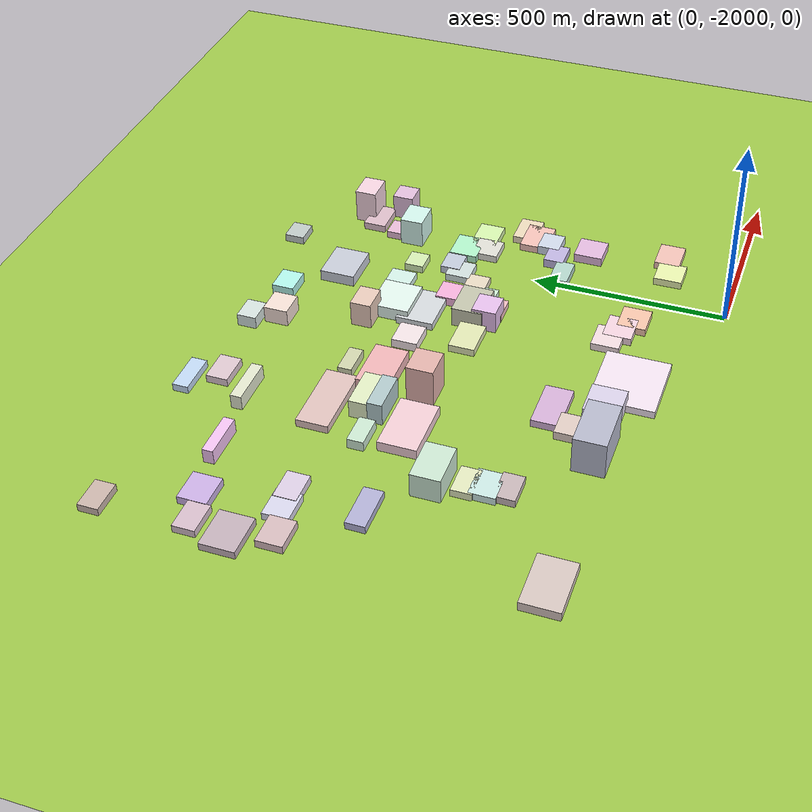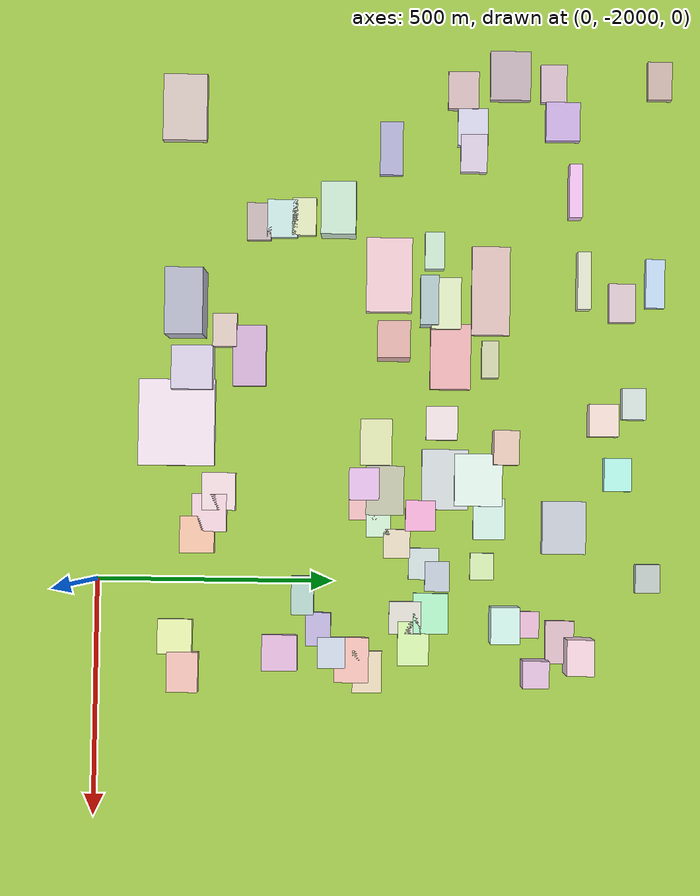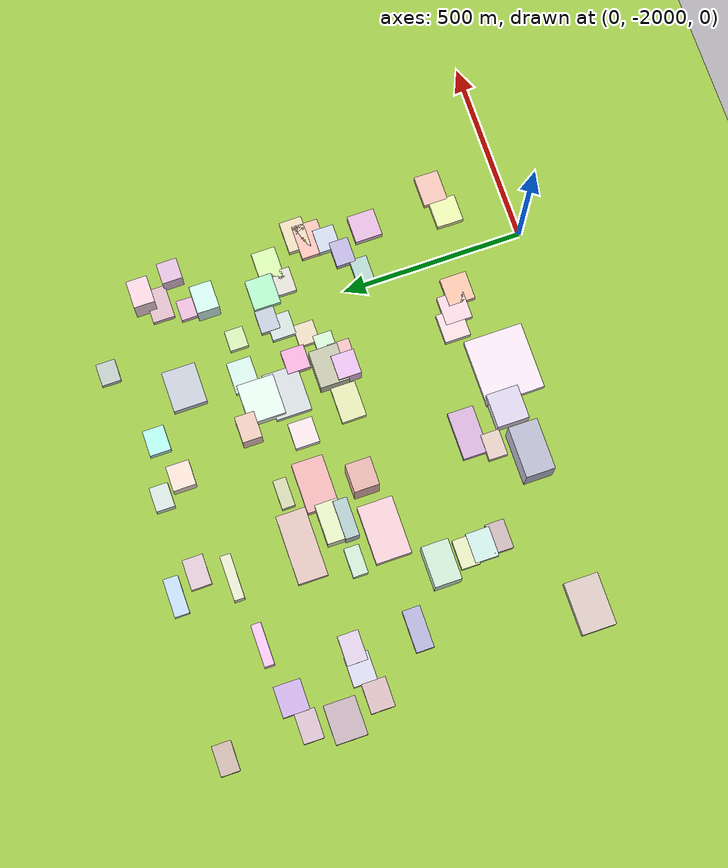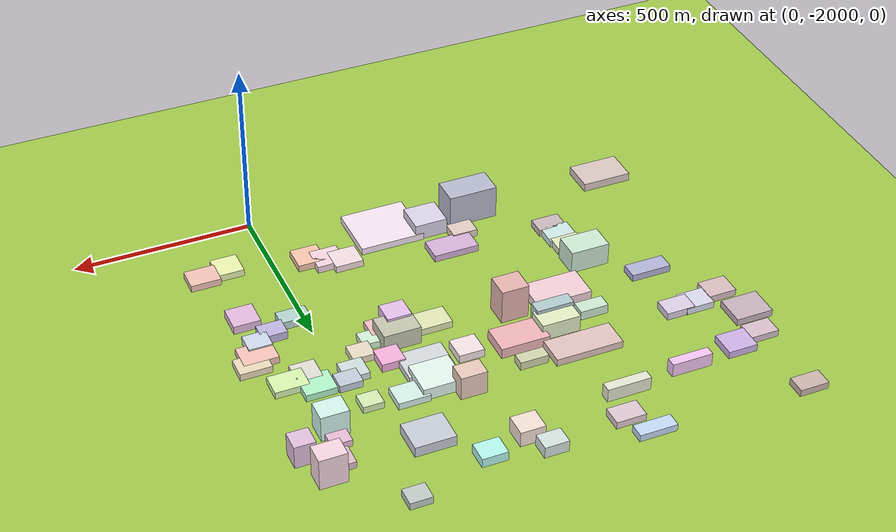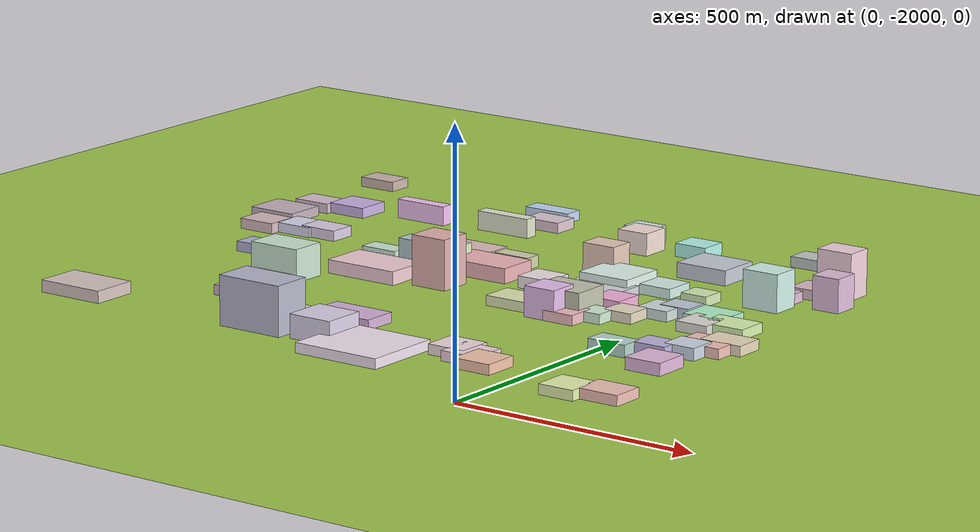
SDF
<sdf version="1.9">
 <world name="city_map">
  <model name="ground_plane">
   <static>1</static>
   <link name="link">
    <collision name="collision">
     <geometry><plane><normal>0 0 1</normal><size>11000 11000</size></plane></geometry>
    </collision>
    <visual name="visual">
     <geometry><plane><normal>0 0 1</normal><size>11000 11000</size></plane></geometry>
     <material>
      <ambient>0.551 0.712 0.210 1</ambient>
      <diffuse>0.651 0.812 0.310 1</diffuse>
      <specular>0.1 0.1 0.05 1</specular>
     </material>
    </visual>
   </link>
  </model>
  <model name="building_296272154">
   <static>1</static>
   <pose>-333.15054182032713 -1835.4500552881868 10.0 0 0 0</pose>
   <link name="link">
    <collision name="collision">
     <geometry><box><size>183.29429999987923 161.93154199717628 20</size></box></geometry>
    </collision>
    <visual name="visual">
     <cast_shadows>false</cast_shadows>
     <geometry><box><size>183.29429999987923 161.93154199717628 20</size></box></geometry>
     <material>
      <ambient>0.889 0.828 0.881 1</ambient>
      <diffuse>0.989 0.928 0.981 1</diffuse>
      <specular>0.297 0.278 0.294 1</specular>
      <emissive>0.01 0.01 0.01 1</emissive>
     </material>
    </visual>
   </link>
  </model>
  <model name="building_746118709">
   <static>1</static>
   <pose>-652.0483020920806 -1387.5432757839808 13.5 0 0 0</pose>
   <link name="link">
    <collision name="collision">
     <geometry><box><size>158.05205404151792 97.08059999955054 27.0</size></box></geometry>
    </collision>
    <visual name="visual">
     <cast_shadows>false</cast_shadows>
     <geometry><box><size>158.05205404151792 97.08059999955054 27.0</size></box></geometry>
     <material>
      <ambient>0.884 0.739 0.770 1</ambient>
      <diffuse>0.984 0.839 0.870 1</diffuse>
      <specular>0.295 0.252 0.261 1</specular>
      <emissive>0.01 0.01 0.01 1</emissive>
     </material>
    </visual>
   </link>
  </model>
  <model name="building_683485028">
   <static>1</static>
   <pose>-621.1043826910775 -1171.2189192430753 10.5 0 0 0</pose>
   <link name="link">
    <collision name="collision">
     <geometry><box><size>188.82476844535847 81.08550000034143 21.0</size></box></geometry>
    </collision>
    <visual name="visual">
     <cast_shadows>false</cast_shadows>
     <geometry><box><size>188.82476844535847 81.08550000034143 21.0</size></box></geometry>
     <material>
      <ambient>0.809 0.691 0.671 1</ambient>
      <diffuse>0.909 0.791 0.771 1</diffuse>
      <specular>0.273 0.237 0.231 1</specular>
      <emissive>0.01 0.01 0.01 1</emissive>
     </material>
    </visual>
   </link>
  </model>
  <model name="building_749013060">
   <static>1</static>
   <pose>-1006.5354186029734 -1827.4117226310132 12.0 0 0 0</pose>
   <link name="link">
    <collision name="collision">
     <geometry><box><size>141.9241552651078 93.5618999994432 24.0</size></box></geometry>
    </collision>
    <visual name="visual">
     <cast_shadows>false</cast_shadows>
     <geometry><box><size>141.9241552651078 93.5618999994432 24.0</size></box></geometry>
     <material>
      <ambient>0.775 0.708 0.685 1</ambient>
      <diffuse>0.875 0.808 0.785 1</diffuse>
      <specular>0.263 0.242 0.236 1</specular>
      <emissive>0.01 0.01 0.01 1</emissive>
     </material>
    </visual>
   </link>
  </model>
  <model name="building_397403182">
   <static>1</static>
   <pose>-218.47697458689717 -1264.6035485329335 10.0 0 0 0</pose>
   <link name="link">
    <collision name="collision">
     <geometry><box><size>127.72748300686777 97.702200000505 20</size></box></geometry>
    </collision>
    <visual name="visual">
     <cast_shadows>false</cast_shadows>
     <geometry><box><size>127.72748300686777 97.702200000505 20</size></box></geometry>
     <material>
      <ambient>0.762 0.783 0.797 1</ambient>
      <diffuse>0.862 0.883 0.897 1</diffuse>
      <specular>0.259 0.265 0.269 1</specular>
      <emissive>0.01 0.01 0.01 1</emissive>
     </material>
    </visual>
   </link>
  </model>
  <model name="building_839717531">
   <static>1</static>
   <pose>-478.64563139325287 -1255.7979732360977 15.0 0 0 0</pose>
   <link name="link">
    <collision name="collision">
     <geometry><box><size>137.71958092130964 85.54770000043277 30.0</size></box></geometry>
    </collision>
    <visual name="visual">
     <cast_shadows>false</cast_shadows>
     <geometry><box><size>137.71958092130964 85.54770000043277 30.0</size></box></geometry>
     <material>
      <ambient>0.870 0.637 0.648 1</ambient>
      <diffuse>0.970 0.737 0.748 1</diffuse>
      <specular>0.291 0.221 0.225 1</specular>
      <emissive>0.01 0.01 0.01 1</emissive>
     </material>
    </visual>
   </link>
  </model>
  <model name="building_857533639">
   <static>1</static>
   <pose>-217.95832628244892 -1194.0864479062614 17.543935763565486 0 0 0</pose>
   <link name="link">
    <collision name="collision">
     <geometry><box><size>110.42280000009441 101.1345110778354 35.08787152713097</size></box></geometry>
    </collision>
    <visual name="visual">
     <cast_shadows>false</cast_shadows>
     <geometry><box><size>110.42280000009441 101.1345110778354 35.08787152713097</size></box></geometry>
     <material>
      <ambient>0.823 0.899 0.866 1</ambient>
      <diffuse>0.923 0.999 0.966 1</diffuse>
      <specular>0.277 0.300 0.290 1</specular>
      <emissive>0.01 0.01 0.01 1</emissive>
     </material>
    </visual>
   </link>
  </model>
  <model name="building_438642443">
   <static>1</static>
   <pose>-583.5155454283137 -1815.2790743171636 48.81684222580935 0 0 0</pose>
   <link name="link">
    <collision name="collision">
     <geometry><box><size>139.6934999998578 79.72886399928544 97.6336844516187</size></box></geometry>
    </collision>
    <visual name="visual">
     <cast_shadows>false</cast_shadows>
     <geometry><box><size>139.6934999998578 79.72886399928544 97.6336844516187</size></box></geometry>
     <material>
      <ambient>0.642 0.652 0.729 1</ambient>
      <diffuse>0.742 0.752 0.829 1</diffuse>
      <specular>0.222 0.225 0.249 1</specular>
      <emissive>0.01 0.01 0.01 1</emissive>
     </material>
    </visual>
   </link>
  </model>
  <model name="building_701244760">
   <static>1</static>
   <pose>-119.571562639842 -1012.0463028909658 15.0 0 0 0</pose>
   <link name="link">
    <collision name="collision">
     <geometry><box><size>111.41315887709224 92.03009999968259 30.0</size></box></geometry>
    </collision>
    <visual name="visual">
     <cast_shadows>false</cast_shadows>
     <geometry><box><size>111.41315887709224 92.03009999968259 30.0</size></box></geometry>
     <material>
      <ambient>0.708 0.728 0.773 1</ambient>
      <diffuse>0.808 0.828 0.873 1</diffuse>
      <specular>0.242 0.248 0.262 1</specular>
      <emissive>0.01 0.01 0.01 1</emissive>
     </material>
    </visual>
   </link>
  </model>
  <model name="building_900991304">
   <static>1</static>
   <pose>-477.13966517560453 -1682.75867720001 10.0 0 0 0</pose>
   <link name="link">
    <collision name="collision">
     <geometry><box><size>129.73847567813752 70.36289999965106 20</size></box></geometry>
    </collision>
    <visual name="visual">
     <cast_shadows>false</cast_shadows>
     <geometry><box><size>129.73847567813752 70.36289999965106 20</size></box></geometry>
     <material>
      <ambient>0.767 0.623 0.778 1</ambient>
      <diffuse>0.867 0.723 0.878 1</diffuse>
      <specular>0.260 0.217 0.263 1</specular>
      <emissive>0.01 0.01 0.01 1</emissive>
     </material>
    </visual>
   </link>
  </model>
  <model name="building_255088716">
   <static>1</static>
   <pose>-1083.3858277837153 -1133.4423490361617 10.0 0 0 0</pose>
   <link name="link">
    <collision name="collision">
     <geometry><box><size>105.09231428904559 85.84739999999158 20</size></box></geometry>
    </collision>
    <visual name="visual">
     <cast_shadows>false</cast_shadows>
     <geometry><box><size>105.09231428904559 85.84739999999158 20</size></box></geometry>
     <material>
      <ambient>0.701 0.622 0.662 1</ambient>
      <diffuse>0.801 0.722 0.762 1</diffuse>
      <specular>0.240 0.217 0.229 1</specular>
      <emissive>0.01 0.01 0.01 1</emissive>
     </material>
    </visual>
   </link>
  </model>
  <model name="building_740932418">
   <static>1</static>
   <pose>-193.32245647153294 -1391.149778231176 26.505255094531897 0 0 0</pose>
   <link name="link">
    <collision name="collision">
     <geometry><box><size>103.31439100715997 79.55369999979212 53.010510189063794</size></box></geometry>
    </collision>
    <visual name="visual">
     <cast_shadows>false</cast_shadows>
     <geometry><box><size>103.31439100715997 79.55369999979212 53.010510189063794</size></box></geometry>
     <material>
      <ambient>0.694 0.700 0.605 1</ambient>
      <diffuse>0.794 0.800 0.705 1</diffuse>
      <specular>0.238 0.240 0.212 1</specular>
      <emissive>0.01 0.01 0.01 1</emissive>
     </material>
    </visual>
   </link>
  </model>
  <model name="building_925273843">
   <static>1</static>
   <pose>-787.2904786269545 -1496.245793894506 33.0 0 0 0</pose>
   <link name="link">
    <collision name="collision">
     <geometry><box><size>111.06598986856534 73.55969999994016 66.0</size></box></geometry>
    </collision>
    <visual name="visual">
     <cast_shadows>false</cast_shadows>
     <geometry><box><size>111.06598986856534 73.55969999994016 66.0</size></box></geometry>
     <material>
      <ambient>0.730 0.840 0.756 1</ambient>
      <diffuse>0.830 0.940 0.856 1</diffuse>
      <specular>0.249 0.282 0.257 1</specular>
      <emissive>0.01 0.01 0.01 1</emissive>
     </material>
    </visual>
   </link>
  </model>
  <model name="building_938354103">
   <static>1</static>
   <pose>-448.7517027245904 -1801.8102161431113 23.381824939166115 0 0 0</pose>
   <link name="link">
    <collision name="collision">
     <geometry><box><size>92.71829999983794 87.72837160444907 46.76364987833223</size></box></geometry>
    </collision>
    <visual name="visual">
     <cast_shadows>false</cast_shadows>
     <geometry><box><size>92.71829999983794 87.72837160444907 46.76364987833223</size></box></geometry>
     <material>
      <ambient>0.788 0.757 0.846 1</ambient>
      <diffuse>0.888 0.857 0.946 1</diffuse>
      <specular>0.266 0.257 0.284 1</specular>
      <emissive>0.01 0.01 0.01 1</emissive>
     </material>
    </visual>
   </link>
  </model>
  <model name="building_823130952">
   <static>1</static>
   <pose>165.4824159864386 -1457.9534077364544 10.0 0 0 0</pose>
   <link name="link">
    <collision name="collision">
     <geometry><box><size>95.02710000000292 72.80458998642041 20</size></box></geometry>
    </collision>
    <visual name="visual">
     <cast_shadows>false</cast_shadows>
     <geometry><box><size>95.02710000000292 72.80458998642041 20</size></box></geometry>
     <material>
      <ambient>0.892 0.690 0.651 1</ambient>
      <diffuse>0.992 0.790 0.751 1</diffuse>
      <specular>0.298 0.237 0.225 1</specular>
      <emissive>0.01 0.01 0.01 1</emissive>
     </material>
    </visual>
   </link>
  </model>
  <model name="building_173097054">
   <static>1</static>
   <pose>-590.2929804939414 -1266.382845747815 24.581197760829276 0 0 0</pose>
   <link name="link">
    <collision name="collision">
     <geometry><box><size>108.84480460962632 62.38200000024108 49.16239552165855</size></box></geometry>
    </collision>
    <visual name="visual">
     <cast_shadows>false</cast_shadows>
     <geometry><box><size>108.84480460962632 62.38200000024108 49.16239552165855</size></box></geometry>
     <material>
      <ambient>0.821 0.867 0.699 1</ambient>
      <diffuse>0.921 0.967 0.799 1</diffuse>
      <specular>0.276 0.290 0.240 1</specular>
      <emissive>0.01 0.01 0.01 1</emissive>
     </material>
    </visual>
   </link>
  </model>
  <model name="building_899867792">
   <static>1</static>
   <pose>-296.1827706840844 -1410.9876359187315 10.0 0 0 0</pose>
   <link name="link">
    <collision name="collision">
     <geometry><box><size>98.16840000043214 67.40594366271426 20</size></box></geometry>
    </collision>
    <visual name="visual">
     <cast_shadows>false</cast_shadows>
     <geometry><box><size>98.16840000043214 67.40594366271426 20</size></box></geometry>
     <material>
      <ambient>0.816 0.837 0.634 1</ambient>
      <diffuse>0.916 0.937 0.734 1</diffuse>
      <specular>0.275 0.281 0.220 1</specular>
      <emissive>0.01 0.01 0.01 1</emissive>
     </material>
    </visual>
   </link>
  </model>
  <model name="building_782211771">
   <static>1</static>
   <pose>65.32245829557306 -1291.4820289686493 10.0 0 0 0</pose>
   <link name="link">
    <collision name="collision">
     <geometry><box><size>85.12590000023579 74.13983165746862 20</size></box></geometry>
    </collision>
    <visual name="visual">
     <cast_shadows>false</cast_shadows>
     <geometry><box><size>85.12590000023579 74.13983165746862 20</size></box></geometry>
     <material>
      <ambient>0.623 0.892 0.720 1</ambient>
      <diffuse>0.723 0.992 0.820 1</diffuse>
      <specular>0.217 0.298 0.246 1</specular>
      <emissive>0.01 0.01 0.01 1</emissive>
     </material>
    </visual>
   </link>
  </model>
  <model name="building_647516196">
   <static>1</static>
   <pose>128.92654108588823 -1327.7097841097498 10.0 0 0 0</pose>
   <link name="link">
    <collision name="collision">
     <geometry><box><size>93.39540000065227 65.9184201199528 20</size></box></geometry>
    </collision>
    <visual name="visual">
     <cast_shadows>false</cast_shadows>
     <geometry><box><size>93.39540000065227 65.9184201199528 20</size></box></geometry>
     <material>
      <ambient>0.775 0.894 0.614 1</ambient>
      <diffuse>0.875 0.994 0.714 1</diffuse>
      <specular>0.262 0.298 0.214 1</specular>
      <emissive>0.01 0.01 0.01 1</emissive>
     </material>
    </visual>
   </link>
  </model>
  <model name="building_810832167">
   <static>1</static>
   <pose>-985.9766065749009 -1020.7924598323632 10.5 0 0 0</pose>
   <link name="link">
    <collision name="collision">
     <geometry><box><size>83.1057000002886 72.73741967634388 21.0</size></box></geometry>
    </collision>
    <visual name="visual">
     <cast_shadows>false</cast_shadows>
     <geometry><box><size>83.1057000002886 72.73741967634388 21.0</size></box></geometry>
     <material>
      <ambient>0.727 0.619 0.829 1</ambient>
      <diffuse>0.827 0.719 0.929 1</diffuse>
      <specular>0.248 0.216 0.279 1</specular>
      <emissive>0.01 0.01 0.01 1</emissive>
     </material>
    </visual>
   </link>
  </model>
  <model name="building_768928161">
   <static>1</static>
   <pose>-142.19985735113215 -1763.3272934822267 10.0 0 0 0</pose>
   <link name="link">
    <collision name="collision">
     <geometry><box><size>79.59810000031098 73.31617436885581 20</size></box></geometry>
    </collision>
    <visual name="visual">
     <cast_shadows>false</cast_shadows>
     <geometry><box><size>79.59810000031098 73.31617436885581 20</size></box></geometry>
     <material>
      <ambient>0.892 0.765 0.811 1</ambient>
      <diffuse>0.992 0.865 0.911 1</diffuse>
      <specular>0.298 0.259 0.273 1</specular>
      <emissive>0.01 0.01 0.01 1</emissive>
     </material>
    </visual>
   </link>
  </model>
  <model name="building_636814227">
   <static>1</static>
   <pose>-136.41320293982915 -1170.076877662624 10.0 0 0 0</pose>
   <link name="link">
    <collision name="collision">
     <geometry><box><size>87.4063796633493 66.54449999998491 20</size></box></geometry>
    </collision>
    <visual name="visual">
     <cast_shadows>false</cast_shadows>
     <geometry><box><size>87.4063796633493 66.54449999998491 20</size></box></geometry>
     <material>
      <ambient>0.766 0.876 0.840 1</ambient>
      <diffuse>0.866 0.976 0.940 1</diffuse>
      <specular>0.260 0.293 0.282 1</specular>
      <emissive>0.01 0.01 0.01 1</emissive>
     </material>
    </visual>
   </link>
  </model>
  <model name="building_252000779">
   <static>1</static>
   <pose>-95.7075877594773 -1788.408235808967 10.0 0 0 0</pose>
   <link name="link">
    <collision name="collision">
     <geometry><box><size>77.91090000031176 73.14082731701069 20</size></box></geometry>
    </collision>
    <visual name="visual">
     <cast_shadows>false</cast_shadows>
     <geometry><box><size>77.91090000031176 73.14082731701069 20</size></box></geometry>
     <material>
      <ambient>0.898 0.703 0.601 1</ambient>
      <diffuse>0.998 0.803 0.701 1</diffuse>
      <specular>0.299 0.241 0.210 1</specular>
      <emissive>0.01 0.01 0.01 1</emissive>
     </material>
    </visual>
   </link>
  </model>
  <model name="building_927271066">
   <static>1</static>
   <pose>152.0417010461455 -1610.0769292861478 12.0 0 0 0</pose>
   <link name="link">
    <collision name="collision">
     <geometry><box><size>75.5466000002869 74.90163264489344 24.0</size></box></geometry>
    </collision>
    <visual name="visual">
     <cast_shadows>false</cast_shadows>
     <geometry><box><size>75.5466000002869 74.90163264489344 24.0</size></box></geometry>
     <material>
      <ambient>0.822 0.655 0.801 1</ambient>
      <diffuse>0.922 0.755 0.901 1</diffuse>
      <specular>0.277 0.226 0.270 1</specular>
      <emissive>0.01 0.01 0.01 1</emissive>
     </material>
    </visual>
   </link>
  </model>
  <model name="building_29976820">
   <static>1</static>
   <pose>-187.44509991566363 -1743.8664965465248 10.0 0 0 0</pose>
   <link name="link">
    <collision name="collision">
     <geometry><box><size>79.60919999965199 71.07264529236654 20</size></box></geometry>
    </collision>
    <visual name="visual">
     <cast_shadows>false</cast_shadows>
     <geometry><box><size>79.60919999965199 71.07264529236654 20</size></box></geometry>
     <material>
      <ambient>0.887 0.798 0.817 1</ambient>
      <diffuse>0.987 0.898 0.917 1</diffuse>
      <specular>0.296 0.269 0.275 1</specular>
      <emissive>0.01 0.01 0.01 1</emissive>
     </material>
    </visual>
   </link>
  </model>
  <model name="building_553643427">
   <static>1</static>
   <pose>195.58181477399796 -1815.2716328119247 10.0 0 0 0</pose>
   <link name="link">
    <collision name="collision">
     <geometry><box><size>84.83730000001799 66.41829230510957 20</size></box></geometry>
    </collision>
    <visual name="visual">
     <cast_shadows>false</cast_shadows>
     <geometry><box><size>84.83730000001799 66.41829230510957 20</size></box></geometry>
     <material>
      <ambient>0.881 0.691 0.646 1</ambient>
      <diffuse>0.981 0.791 0.746 1</diffuse>
      <specular>0.294 0.237 0.224 1</specular>
      <emissive>0.01 0.01 0.01 1</emissive>
     </material>
    </visual>
   </link>
  </model>
  <model name="building_145779216">
   <static>1</static>
   <pose>-923.8678655328869 -1385.8626202024866 10.0 0 0 0</pose>
   <link name="link">
    <collision name="collision">
     <geometry><box><size>113.7795171568418 48.47369999939133 20</size></box></geometry>
    </collision>
    <visual name="visual">
     <cast_shadows>false</cast_shadows>
     <geometry><box><size>113.7795171568418 48.47369999939133 20</size></box></geometry>
     <material>
      <ambient>0.628 0.624 0.771 1</ambient>
      <diffuse>0.728 0.724 0.871 1</diffuse>
      <specular>0.218 0.217 0.261 1</specular>
      <emissive>0.01 0.01 0.01 1</emissive>
     </material>
    </visual>
   </link>
  </model>
  <model name="building_749317446">
   <static>1</static>
   <pose>122.69209413770747 -1018.3315890251289 10.0 0 0 0</pose>
   <link name="link">
    <collision name="collision">
     <geometry><box><size>90.33180000034235 60.172007355839405 20</size></box></geometry>
    </collision>
    <visual name="visual">
     <cast_shadows>false</cast_shadows>
     <geometry><box><size>90.33180000034235 60.172007355839405 20</size></box></geometry>
     <material>
      <ambient>0.794 0.667 0.713 1</ambient>
      <diffuse>0.894 0.767 0.813 1</diffuse>
      <specular>0.268 0.230 0.244 1</specular>
      <emissive>0.01 0.01 0.01 1</emissive>
     </material>
    </visual>
   </link>
  </model>
  <model name="building_212828575">
   <static>1</static>
   <pose>189.794467649677 -1424.6542866531054 10.0 0 0 0</pose>
   <link name="link">
    <collision name="collision">
     <geometry><box><size>87.84540000046803 61.757915559025804 20</size></box></geometry>
    </collision>
    <visual name="visual">
     <cast_shadows>false</cast_shadows>
     <geometry><box><size>87.84540000046803 61.757915559025804 20</size></box></geometry>
     <material>
      <ambient>0.858 0.788 0.668 1</ambient>
      <diffuse>0.958 0.888 0.768 1</diffuse>
      <specular>0.287 0.266 0.230 1</specular>
      <emissive>0.01 0.01 0.01 1</emissive>
     </material>
    </visual>
   </link>
  </model>
  <model name="building_555604841">
   <static>1</static>
   <pose>120.63757251000804 -1832.307136158221 10.0 0 0 0</pose>
   <link name="link">
    <collision name="collision">
     <geometry><box><size>73.8039000004278 73.06022192123383 20</size></box></geometry>
    </collision>
    <visual name="visual">
     <cast_shadows>false</cast_shadows>
     <geometry><box><size>73.8039000004278 73.06022192123383 20</size></box></geometry>
     <material>
      <ambient>0.849 0.889 0.616 1</ambient>
      <diffuse>0.949 0.989 0.716 1</diffuse>
      <specular>0.285 0.297 0.215 1</specular>
      <emissive>0.01 0.01 0.01 1</emissive>
     </material>
    </visual>
   </link>
  </model>
  <model name="building_843185136">
   <static>1</static>
   <pose>-507.8849791657618 -1376.3945747142839 50.0 0 0 0</pose>
   <link name="link">
    <collision name="collision">
     <geometry><box><size>76.93147933236818 68.74229999964143 100</size></box></geometry>
    </collision>
    <visual name="visual">
     <cast_shadows>false</cast_shadows>
     <geometry><box><size>76.93147933236818 68.74229999964143 100</size></box></geometry>
     <material>
      <ambient>0.821 0.627 0.603 1</ambient>
      <diffuse>0.921 0.727 0.703 1</diffuse>
      <specular>0.276 0.218 0.211 1</specular>
      <emissive>0.01 0.01 0.01 1</emissive>
     </material>
    </visual>
   </link>
  </model>
  <model name="building_907489887">
   <static>1</static>
   <pose>-770.9638161175508 -1616.4759693728452 10.0 0 0 0</pose>
   <link name="link">
    <collision name="collision">
     <geometry><box><size>80.75943044828594 64.6463999998872 20</size></box></geometry>
    </collision>
    <visual name="visual">
     <cast_shadows>false</cast_shadows>
     <geometry><box><size>80.75943044828594 64.6463999998872 20</size></box></geometry>
     <material>
      <ambient>0.733 0.847 0.831 1</ambient>
      <diffuse>0.833 0.947 0.931 1</diffuse>
      <specular>0.250 0.284 0.279 1</specular>
      <emissive>0.01 0.01 0.01 1</emissive>
     </material>
    </visual>
   </link>
  </model>
  <model name="building_368094505">
   <static>1</static>
   <pose>-1050.7885327807023 -1233.3134745628342 10.5 0 0 0</pose>
   <link name="link">
    <collision name="collision">
     <geometry><box><size>79.53150000032139 64.93743144550024 21.0</size></box></geometry>
    </collision>
    <visual name="visual">
     <cast_shadows>false</cast_shadows>
     <geometry><box><size>79.53150000032139 64.93743144550024 21.0</size></box></geometry>
     <material>
      <ambient>0.775 0.664 0.676 1</ambient>
      <diffuse>0.875 0.764 0.776 1</diffuse>
      <specular>0.262 0.229 0.233 1</specular>
      <emissive>0.01 0.01 0.01 1</emissive>
     </material>
    </visual>
   </link>
  </model>
  <model name="building_65953199">
   <static>1</static>
   <pose>-972.5374016104271 -1212.6756540586325 10.0 0 0 0</pose>
   <link name="link">
    <collision name="collision">
     <geometry><box><size>79.89779999986979 64.33608508151492 20</size></box></geometry>
    </collision>
    <visual name="visual">
     <cast_shadows>false</cast_shadows>
     <geometry><box><size>79.89779999986979 64.33608508151492 20</size></box></geometry>
     <material>
      <ambient>0.781 0.777 0.860 1</ambient>
      <diffuse>0.881 0.877 0.960 1</diffuse>
      <specular>0.264 0.263 0.288 1</specular>
      <emissive>0.01 0.01 0.01 1</emissive>
     </material>
    </visual>
   </link>
  </model>
  <model name="building_704496990">
   <static>1</static>
   <pose>-337.98231776002734 -1272.0945407463942 12.0 0 0 0</pose>
   <link name="link">
    <collision name="collision">
     <geometry><box><size>71.06219999993613 66.50554396251525 24.0</size></box></geometry>
    </collision>
    <visual name="visual">
     <cast_shadows>false</cast_shadows>
     <geometry><box><size>71.06219999993613 66.50554396251525 24.0</size></box></geometry>
     <material>
      <ambient>0.887 0.824 0.834 1</ambient>
      <diffuse>0.987 0.924 0.934 1</diffuse>
      <specular>0.296 0.277 0.280 1</specular>
      <emissive>0.01 0.01 0.01 1</emissive>
     </material>
    </visual>
   </link>
  </model>
  <model name="building_833387699">
   <static>1</static>
   <pose>86.20130369235106 -1137.0404016424106 37.53518693762932 0 0 0</pose>
   <link name="link">
    <collision name="collision">
     <geometry><box><size>76.56288313298087 60.86129999982148 75.07037387525864</size></box></geometry>
    </collision>
    <visual name="visual">
     <cast_shadows>false</cast_shadows>
     <geometry><box><size>76.56288313298087 60.86129999982148 75.07037387525864</size></box></geometry>
     <material>
      <ambient>0.753 0.892 0.853 1</ambient>
      <diffuse>0.853 0.992 0.953 1</diffuse>
      <specular>0.256 0.298 0.286 1</specular>
      <emissive>0.01 0.01 0.01 1</emissive>
     </material>
    </visual>
   </link>
  </model>
  <model name="building_233890122">
   <static>1</static>
   <pose>75.18895584244851 -1345.409686631759 10.0 0 0 0</pose>
   <link name="link">
    <collision name="collision">
     <geometry><box><size>68.42526287301271 68.07629999974552 20</size></box></geometry>
    </collision>
    <visual name="visual">
     <cast_shadows>false</cast_shadows>
     <geometry><box><size>68.42526287301271 68.07629999974552 20</size></box></geometry>
     <material>
      <ambient>0.807 0.800 0.767 1</ambient>
      <diffuse>0.907 0.900 0.867 1</diffuse>
      <specular>0.272 0.270 0.260 1</specular>
      <emissive>0.01 0.01 0.01 1</emissive>
     </material>
    </visual>
   </link>
  </model>
  <model name="building_898413310">
   <static>1</static>
   <pose>-598.4651760346044 -891.6657988698104 10.5 0 0 0</pose>
   <link name="link">
    <collision name="collision">
     <geometry><box><size>82.50629999959358 55.85364277404544 21.0</size></box></geometry>
    </collision>
    <visual name="visual">
     <cast_shadows>false</cast_shadows>
     <geometry><box><size>82.50629999959358 55.85364277404544 21.0</size></box></geometry>
     <material>
      <ambient>0.801 0.712 0.747 1</ambient>
      <diffuse>0.901 0.812 0.847 1</diffuse>
      <specular>0.270 0.244 0.254 1</specular>
      <emissive>0.01 0.01 0.01 1</emissive>
     </material>
    </visual>
   </link>
  </model>
  <model name="building_473130646">
   <static>1</static>
   <pose>-915.3908770186717 -1210.1247497790557 10.5 0 0 0</pose>
   <link name="link">
    <collision name="collision">
     <geometry><box><size>81.18539999993146 56.337060908197294 21.0</size></box></geometry>
    </collision>
    <visual name="visual">
     <cast_shadows>false</cast_shadows>
     <geometry><box><size>81.18539999993146 56.337060908197294 21.0</size></box></geometry>
     <material>
      <ambient>0.796 0.740 0.829 1</ambient>
      <diffuse>0.896 0.840 0.929 1</diffuse>
      <specular>0.269 0.252 0.279 1</specular>
      <emissive>0.01 0.01 0.01 1</emissive>
     </material>
    </visual>
   </link>
  </model>
  <model name="building_184979944">
   <static>1</static>
   <pose>-1067.1112929764242 -1040.888632279529 10.0 0 0 0</pose>
   <link name="link">
    <collision name="collision">
     <geometry><box><size>81.10769999981216 55.41618296605699 20</size></box></geometry>
    </collision>
    <visual name="visual">
     <cast_shadows>false</cast_shadows>
     <geometry><box><size>81.10769999981216 55.41618296605699 20</size></box></geometry>
     <material>
      <ambient>0.772 0.673 0.728 1</ambient>
      <diffuse>0.872 0.773 0.828 1</diffuse>
      <specular>0.262 0.232 0.249 1</specular>
      <emissive>0.01 0.01 0.01 1</emissive>
     </material>
    </visual>
   </link>
  </model>
  <model name="building_915777205">
   <static>1</static>
   <pose>-39.43768776297094 -1307.3762032733027 10.0 0 0 0</pose>
   <link name="link">
    <collision name="collision">
     <geometry><box><size>66.55560000011462 64.66821457081873 20</size></box></geometry>
    </collision>
    <visual name="visual">
     <cast_shadows>false</cast_shadows>
     <geometry><box><size>66.55560000011462 64.66821457081873 20</size></box></geometry>
     <material>
      <ambient>0.749 0.805 0.799 1</ambient>
      <diffuse>0.849 0.905 0.899 1</diffuse>
      <specular>0.255 0.272 0.270 1</specular>
      <emissive>0.01 0.01 0.01 1</emissive>
     </material>
    </visual>
   </link>
  </model>
  <model name="building_837107591">
   <static>1</static>
   <pose>149.4953260868724 -981.1903176437895 46.01170450714189 0 0 0</pose>
   <link name="link">
    <collision name="collision">
     <geometry><box><size>74.89850952504918 57.220500000653374 92.02340901428379</size></box></geometry>
    </collision>
    <visual name="visual">
     <cast_shadows>false</cast_shadows>
     <geometry><box><size>74.89850952504918 57.220500000653374 92.02340901428379</size></box></geometry>
     <material>
      <ambient>0.894 0.763 0.809 1</ambient>
      <diffuse>0.994 0.863 0.909 1</diffuse>
      <specular>0.298 0.259 0.273 1</specular>
      <emissive>0.01 0.01 0.01 1</emissive>
     </material>
    </visual>
   </link>
  </model>
  <model name="building_596263059">
   <static>1</static>
   <pose>-347.1552854001148 -930.7652592622618 22.5 0 0 0</pose>
   <link name="link">
    <collision name="collision">
     <geometry><box><size>68.37199495044348 62.68169999979989 45.0</size></box></geometry>
    </collision>
    <visual name="visual">
     <cast_shadows>false</cast_shadows>
     <geometry><box><size>68.37199495044348 62.68169999979989 45.0</size></box></geometry>
     <material>
      <ambient>0.895 0.810 0.769 1</ambient>
      <diffuse>0.995 0.910 0.869 1</diffuse>
      <specular>0.299 0.273 0.261 1</specular>
      <emissive>0.01 0.01 0.01 1</emissive>
     </material>
    </visual>
   </link>
  </model>
  <model name="building_386868968">
   <static>1</static>
   <pose>-206.82584305631852 -1434.9927673340082 30.06481635473665 0 0 0</pose>
   <link name="link">
    <collision name="collision">
     <geometry><box><size>67.6989000000674 63.01474600558552 60.1296327094733</size></box></geometry>
    </collision>
    <visual name="visual">
     <cast_shadows>false</cast_shadows>
     <geometry><box><size>67.6989000000674 63.01474600558552 60.1296327094733</size></box></geometry>
     <material>
      <ambient>0.835 0.678 0.857 1</ambient>
      <diffuse>0.935 0.778 0.957 1</diffuse>
      <specular>0.281 0.233 0.287 1</specular>
      <emissive>0.01 0.01 0.01 1</emissive>
     </material>
    </visual>
   </link>
  </model>
  <model name="building_772562677">
   <static>1</static>
   <pose>-640.8966837979704 -821.5518017690238 10.0 0 0 0</pose>
   <link name="link">
    <collision name="collision">
     <geometry><box><size>104.26132923639972 40.4595000003809 20</size></box></geometry>
    </collision>
    <visual name="visual">
     <cast_shadows>false</cast_shadows>
     <geometry><box><size>104.26132923639972 40.4595000003809 20</size></box></geometry>
     <material>
      <ambient>0.691 0.783 0.890 1</ambient>
      <diffuse>0.791 0.883 0.990 1</diffuse>
      <specular>0.237 0.265 0.297 1</specular>
      <emissive>0.01 0.01 0.01 1</emissive>
     </material>
    </visual>
   </link>
  </model>
  <model name="building_287434641">
   <static>1</static>
   <pose>-1076.177999771332 -814.5701106010387 10.0 0 0 0</pose>
   <link name="link">
    <collision name="collision">
     <geometry><box><size>81.39630000002995 51.570151060255256 20</size></box></geometry>
    </collision>
    <visual name="visual">
     <cast_shadows>false</cast_shadows>
     <geometry><box><size>81.39630000002995 51.570151060255256 20</size></box></geometry>
     <material>
      <ambient>0.726 0.637 0.601 1</ambient>
      <diffuse>0.826 0.737 0.701 1</diffuse>
      <specular>0.248 0.221 0.210 1</specular>
      <emissive>0.01 0.01 0.01 1</emissive>
     </material>
    </visual>
   </link>
  </model>
  <model name="building_870800691">
   <static>1</static>
   <pose>-141.14206867755496 -1315.2547756583951 12.0 0 0 0</pose>
   <link name="link">
    <collision name="collision">
     <geometry><box><size>65.05356089212074 63.71400000003291 24.0</size></box></geometry>
    </collision>
    <visual name="visual">
     <cast_shadows>false</cast_shadows>
     <geometry><box><size>65.05356089212074 63.71400000003291 24.0</size></box></geometry>
     <material>
      <ambient>0.894 0.622 0.791 1</ambient>
      <diffuse>0.994 0.722 0.891 1</diffuse>
      <specular>0.298 0.217 0.267 1</specular>
      <emissive>0.01 0.01 0.01 1</emissive>
     </material>
    </visual>
   </link>
  </model>
  <model name="building_633635597">
   <static>1</static>
   <pose>-763.9797166387254 -1666.0706508925534 10.0 0 0 0</pose>
   <link name="link">
    <collision name="collision">
     <geometry><box><size>79.46977594636303 51.637200000079986 20</size></box></geometry>
    </collision>
    <visual name="visual">
     <cast_shadows>false</cast_shadows>
     <geometry><box><size>79.46977594636303 51.637200000079986 20</size></box></geometry>
     <material>
      <ambient>0.714 0.645 0.654 1</ambient>
      <diffuse>0.814 0.745 0.754 1</diffuse>
      <specular>0.244 0.224 0.226 1</specular>
      <emissive>0.01 0.01 0.01 1</emissive>
     </material>
    </visual>
   </link>
  </model>
  <model name="building_209956541">
   <static>1</static>
   <pose>-164.20752518561886 -1436.6773704722123 10.0 0 0 0</pose>
   <link name="link">
    <collision name="collision">
     <geometry><box><size>66.9774000003116 60.90011716893814 20</size></box></geometry>
    </collision>
    <visual name="visual">
     <cast_shadows>false</cast_shadows>
     <geometry><box><size>66.9774000003116 60.90011716893814 20</size></box></geometry>
     <material>
      <ambient>0.882 0.674 0.692 1</ambient>
      <diffuse>0.982 0.774 0.792 1</diffuse>
      <specular>0.295 0.232 0.238 1</specular>
      <emissive>0.01 0.01 0.01 1</emissive>
     </material>
    </visual>
   </link>
  </model>
  <model name="building_796604057">
   <static>1</static>
   <pose>-232.95538153006365 -898.8030474079561 13.5 0 0 0</pose>
   <link name="link">
    <collision name="collision">
     <geometry><box><size>70.41839999951094 57.92103719547306 27.0</size></box></geometry>
    </collision>
    <visual name="visual">
     <cast_shadows>false</cast_shadows>
     <geometry><box><size>70.41839999951094 57.92103719547306 27.0</size></box></geometry>
     <material>
      <ambient>0.631 0.898 0.853 1</ambient>
      <diffuse>0.731 0.998 0.953 1</diffuse>
      <specular>0.219 0.299 0.286 1</specular>
      <emissive>0.01 0.01 0.01 1</emissive>
     </material>
    </visual>
   </link>
  </model>
  <model name="building_323897026">
   <static>1</static>
   <pose>-775.557160228091 -1570.1946786409349 10.0 0 0 0</pose>
   <link name="link">
    <collision name="collision">
     <geometry><box><size>79.80595125847442 50.815799999945455 20</size></box></geometry>
    </collision>
    <visual name="visual">
     <cast_shadows>false</cast_shadows>
     <geometry><box><size>79.80595125847442 50.815799999945455 20</size></box></geometry>
     <material>
      <ambient>0.823 0.849 0.678 1</ambient>
      <diffuse>0.923 0.949 0.778 1</diffuse>
      <specular>0.277 0.285 0.233 1</specular>
      <emissive>0.01 0.01 0.01 1</emissive>
     </material>
    </visual>
   </link>
  </model>
  <model name="building_461173340">
   <static>1</static>
   <pose>-595.876462198801 -1301.8783944641657 29.709749949138153 0 0 0</pose>
   <link name="link">
    <collision name="collision">
     <geometry><box><size>105.40005150186867 37.98420000063629 59.41949989827631</size></box></geometry>
    </collision>
    <visual name="visual">
     <cast_shadows>false</cast_shadows>
     <geometry><box><size>105.40005150186867 37.98420000063629 59.41949989827631</size></box></geometry>
     <material>
      <ambient>0.623 0.719 0.727 1</ambient>
      <diffuse>0.723 0.819 0.827 1</diffuse>
      <specular>0.217 0.246 0.248 1</specular>
      <emissive>0.01 0.01 0.01 1</emissive>
     </material>
    </visual>
   </link>
  </model>
  <model name="building_470300616">
   <static>1</static>
   <pose>30.066921808024006 -1562.8469178878831 12.0 0 0 0</pose>
   <link name="link">
    <collision name="collision">
     <geometry><box><size>81.69600000037747 47.61198419467304 24.0</size></box></geometry>
    </collision>
    <visual name="visual">
     <cast_shadows>false</cast_shadows>
     <geometry><box><size>81.69600000037747 47.61198419467304 24.0</size></box></geometry>
     <material>
      <ambient>0.632 0.768 0.728 1</ambient>
      <diffuse>0.732 0.868 0.828 1</diffuse>
      <specular>0.220 0.260 0.248 1</specular>
      <emissive>0.01 0.01 0.01 1</emissive>
     </material>
    </visual>
   </link>
  </model>
  <model name="building_800394015">
   <static>1</static>
   <pose>-286.16959757124044 -1137.5437222068733 34.43807802035842 0 0 0</pose>
   <link name="link">
    <collision name="collision">
     <geometry><box><size>72.23879999948934 53.56629531396771 68.87615604071684</size></box></geometry>
    </collision>
    <visual name="visual">
     <cast_shadows>false</cast_shadows>
     <geometry><box><size>72.23879999948934 53.56629531396771 68.87615604071684</size></box></geometry>
     <material>
      <ambient>0.843 0.721 0.660 1</ambient>
      <diffuse>0.943 0.821 0.760 1</diffuse>
      <specular>0.283 0.246 0.228 1</specular>
      <emissive>0.01 0.01 0.01 1</emissive>
     </material>
    </visual>
   </link>
  </model>
  <model name="building_379548037">
   <static>1</static>
   <pose>150.30672475404143 -1500.3743733394454 12.0 0 0 0</pose>
   <link name="link">
    <collision name="collision">
     <geometry><box><size>65.0904000003436 58.313243916975615 24.0</size></box></geometry>
    </collision>
    <visual name="visual">
     <cast_shadows>false</cast_shadows>
     <geometry><box><size>65.0904000003436 58.313243916975615 24.0</size></box></geometry>
     <material>
      <ambient>0.744 0.781 0.849 1</ambient>
      <diffuse>0.844 0.881 0.949 1</diffuse>
      <specular>0.253 0.264 0.285 1</specular>
      <emissive>0.01 0.01 0.01 1</emissive>
     </material>
    </visual>
   </link>
  </model>
  <model name="building_708796439">
   <static>1</static>
   <pose>101.03991806497396 -1528.942708673789 12.0 0 0 0</pose>
   <link name="link">
    <collision name="collision">
     <geometry><box><size>70.22969999967188 52.74641427264998 24.0</size></box></geometry>
    </collision>
    <visual name="visual">
     <cast_shadows>false</cast_shadows>
     <geometry><box><size>70.22969999967188 52.74641427264998 24.0</size></box></geometry>
     <material>
      <ambient>0.679 0.636 0.809 1</ambient>
      <diffuse>0.779 0.736 0.909 1</diffuse>
      <specular>0.234 0.221 0.273 1</specular>
      <emissive>0.01 0.01 0.01 1</emissive>
     </material>
    </visual>
   </link>
  </model>
  <model name="building_484503125">
   <static>1</static>
   <pose>-530.7791794764023 -1735.657259651516 11.371917723946808 0 0 0</pose>
   <link name="link">
    <collision name="collision">
     <geometry><box><size>70.83596578027196 51.22650000001272 22.743835447893616</size></box></geometry>
    </collision>
    <visual name="visual">
     <cast_shadows>false</cast_shadows>
     <geometry><box><size>70.83596578027196 51.22650000001272 22.743835447893616</size></box></geometry>
     <material>
      <ambient>0.812 0.731 0.694 1</ambient>
      <diffuse>0.912 0.831 0.794 1</diffuse>
      <specular>0.274 0.249 0.238 1</specular>
      <emissive>0.01 0.01 0.01 1</emissive>
     </material>
    </visual>
   </link>
  </model>
  <model name="building_507552195">
   <static>1</static>
   <pose>-643.444183582748 -974.4701284261622 19.5 0 0 0</pose>
   <link name="link">
    <collision name="collision">
     <geometry><box><size>122.00482788755583 28.37160000029826 39.0</size></box></geometry>
    </collision>
    <visual name="visual">
     <cast_shadows>false</cast_shadows>
     <geometry><box><size>122.00482788755583 28.37160000029826 39.0</size></box></geometry>
     <material>
      <ambient>0.823 0.838 0.742 1</ambient>
      <diffuse>0.923 0.938 0.842 1</diffuse>
      <specular>0.277 0.281 0.252 1</specular>
      <emissive>0.01 0.01 0.01 1</emissive>
     </material>
    </visual>
   </link>
  </model>
  <model name="building_870555850">
   <static>1</static>
   <pose>-81.23305801854862 -1364.8412780503588 10.0 0 0 0</pose>
   <link name="link">
    <collision name="collision">
     <geometry><box><size>60.68370000011214 56.06183070123566 20</size></box></geometry>
    </collision>
    <visual name="visual">
     <cast_shadows>false</cast_shadows>
     <geometry><box><size>60.68370000011214 56.06183070123566 20</size></box></geometry>
     <material>
      <ambient>0.842 0.788 0.692 1</ambient>
      <diffuse>0.942 0.888 0.792 1</diffuse>
      <specular>0.283 0.266 0.238 1</specular>
      <emissive>0.01 0.01 0.01 1</emissive>
     </material>
    </visual>
   </link>
  </model>
  <model name="building_24489266">
   <static>1</static>
   <pose>-383.2062092869164 -866.1221816289133 16.5 0 0 0</pose>
   <link name="link">
    <collision name="collision">
     <geometry><box><size>66.40538981587497 50.47169999986778 33.0</size></box></geometry>
    </collision>
    <visual name="visual">
     <cast_shadows>false</cast_shadows>
     <geometry><box><size>66.40538981587497 50.47169999986778 33.0</size></box></geometry>
     <material>
      <ambient>0.767 0.819 0.804 1</ambient>
      <diffuse>0.867 0.919 0.904 1</diffuse>
      <specular>0.260 0.276 0.271 1</specular>
      <emissive>0.01 0.01 0.01 1</emissive>
     </material>
    </visual>
   </link>
  </model>
  <model name="building_105894345">
   <static>1</static>
   <pose>-13.204102152072782 -1278.7024455718185 10.5 0 0 0</pose>
   <link name="link">
    <collision name="collision">
     <geometry><box><size>63.38100000008495 52.29775683578166 21.0</size></box></geometry>
    </collision>
    <visual name="visual">
     <cast_shadows>false</cast_shadows>
     <geometry><box><size>63.38100000008495 52.29775683578166 21.0</size></box></geometry>
     <material>
      <ambient>0.689 0.728 0.786 1</ambient>
      <diffuse>0.789 0.828 0.886 1</diffuse>
      <specular>0.237 0.248 0.266 1</specular>
      <emissive>0.01 0.01 0.01 1</emissive>
     </material>
    </visual>
   </link>
  </model>
  <model name="building_630248943">
   <static>1</static>
   <pose>-705.0169035911605 -1291.531094702837 13.5 0 0 0</pose>
   <link name="link">
    <collision name="collision">
     <geometry><box><size>79.3206000002229 41.001934718162 27.0</size></box></geometry>
    </collision>
    <visual name="visual">
     <cast_shadows>false</cast_shadows>
     <geometry><box><size>79.3206000002229 41.001934718162 27.0</size></box></geometry>
     <material>
      <ambient>0.732 0.843 0.755 1</ambient>
      <diffuse>0.832 0.943 0.855 1</diffuse>
      <specular>0.249 0.283 0.256 1</specular>
      <emissive>0.01 0.01 0.01 1</emissive>
     </material>
    </visual>
   </link>
  </model>
  <model name="building_493583986">
   <static>1</static>
   <pose>187.67017321058324 -1071.596627565383 33.29661318474536 0 0 0</pose>
   <link name="link">
    <collision name="collision">
     <geometry><box><size>57.23159999999439 55.734235566088444 66.59322636949072</size></box></geometry>
    </collision>
    <visual name="visual">
     <cast_shadows>false</cast_shadows>
     <geometry><box><size>57.23159999999439 55.734235566088444 66.59322636949072</size></box></geometry>
     <material>
      <ambient>0.814 0.676 0.794 1</ambient>
      <diffuse>0.914 0.776 0.894 1</diffuse>
      <specular>0.274 0.233 0.268 1</specular>
      <emissive>0.01 0.01 0.01 1</emissive>
     </material>
    </visual>
   </link>
  </model>
  <model name="building_603613928">
   <static>1</static>
   <pose>-13.910092593134637 -833.3208869104712 10.5 0 0 0</pose>
   <link name="link">
    <collision name="collision">
     <geometry><box><size>60.53940000000324 52.27948641751798 21.0</size></box></geometry>
    </collision>
    <visual name="visual">
     <cast_shadows>false</cast_shadows>
     <geometry><box><size>60.53940000000324 52.27948641751798 21.0</size></box></geometry>
     <material>
      <ambient>0.682 0.720 0.708 1</ambient>
      <diffuse>0.782 0.820 0.808 1</diffuse>
      <specular>0.235 0.246 0.243 1</specular>
      <emissive>0.01 0.01 0.01 1</emissive>
     </material>
    </visual>
   </link>
  </model>
  <model name="building_15622609">
   <static>1</static>
   <pose>-834.300292763276 -993.9012376219831 19.5 0 0 0</pose>
   <link name="link">
    <collision name="collision">
     <geometry><box><size>113.87839063399473 27.405900000054828 39.0</size></box></geometry>
    </collision>
    <visual name="visual">
     <cast_shadows>false</cast_shadows>
     <geometry><box><size>113.87839063399473 27.405900000054828 39.0</size></box></geometry>
     <material>
      <ambient>0.891 0.700 0.883 1</ambient>
      <diffuse>0.991 0.800 0.983 1</diffuse>
      <specular>0.297 0.240 0.295 1</specular>
      <emissive>0.01 0.01 0.01 1</emissive>
     </material>
    </visual>
   </link>
  </model>
  <model name="building_766237627">
   <static>1</static>
   <pose>86.70678315049658 -1088.591061412628 10.0 0 0 0</pose>
   <link name="link">
    <collision name="collision">
     <geometry><box><size>55.72199999970451 52.59972385758398 20</size></box></geometry>
    </collision>
    <visual name="visual">
     <cast_shadows>false</cast_shadows>
     <geometry><box><size>55.72199999970451 52.59972385758398 20</size></box></geometry>
     <material>
      <ambient>0.839 0.663 0.773 1</ambient>
      <diffuse>0.939 0.763 0.873 1</diffuse>
      <specular>0.282 0.229 0.262 1</specular>
      <emissive>0.01 0.01 0.01 1</emissive>
     </material>
    </visual>
   </link>
  </model>
  <model name="building_831339630">
   <static>1</static>
   <pose>-122.96181965941646 -1404.0053073137035 10.0 0 0 0</pose>
   <link name="link">
    <collision name="collision">
     <geometry><box><size>55.9329000005917 51.44789301516671 20</size></box></geometry>
    </collision>
    <visual name="visual">
     <cast_shadows>false</cast_shadows>
     <geometry><box><size>55.9329000005917 51.44789301516671 20</size></box></geometry>
     <material>
      <ambient>0.755 0.876 0.768 1</ambient>
      <diffuse>0.855 0.976 0.868 1</diffuse>
      <specular>0.256 0.293 0.260 1</specular>
      <emissive>0.01 0.01 0.01 1</emissive>
     </material>
    </visual>
   </link>
  </model>
  <model name="building_355243388">
   <static>1</static>
   <pose>-35.299550435679244 -1184.0491688329569 10.0 0 0 0</pose>
   <link name="link">
    <collision name="collision">
     <geometry><box><size>56.7320999996781 50.06734997379531 20</size></box></geometry>
    </collision>
    <visual name="visual">
     <cast_shadows>false</cast_shadows>
     <geometry><box><size>56.7320999996781 50.06734997379531 20</size></box></geometry>
     <material>
      <ambient>0.767 0.863 0.635 1</ambient>
      <diffuse>0.867 0.963 0.735 1</diffuse>
      <specular>0.260 0.289 0.220 1</specular>
      <emissive>0.01 0.01 0.01 1</emissive>
     </material>
    </visual>
   </link>
  </model>
  <model name="building_202339659">
   <static>1</static>
   <pose>-474.64834541328736 -1171.2155082592612 12.0 0 0 0</pose>
   <link name="link">
    <collision name="collision">
     <geometry><box><size>79.42050000060163 35.738144902461 24.0</size></box></geometry>
    </collision>
    <visual name="visual">
     <cast_shadows>false</cast_shadows>
     <geometry><box><size>79.42050000060163 35.738144902461 24.0</size></box></geometry>
     <material>
      <ambient>0.751 0.764 0.611 1</ambient>
      <diffuse>0.851 0.864 0.711 1</diffuse>
      <specular>0.255 0.259 0.213 1</specular>
      <emissive>0.01 0.01 0.01 1</emissive>
     </material>
    </visual>
   </link>
  </model>
 </world>
</sdf>
